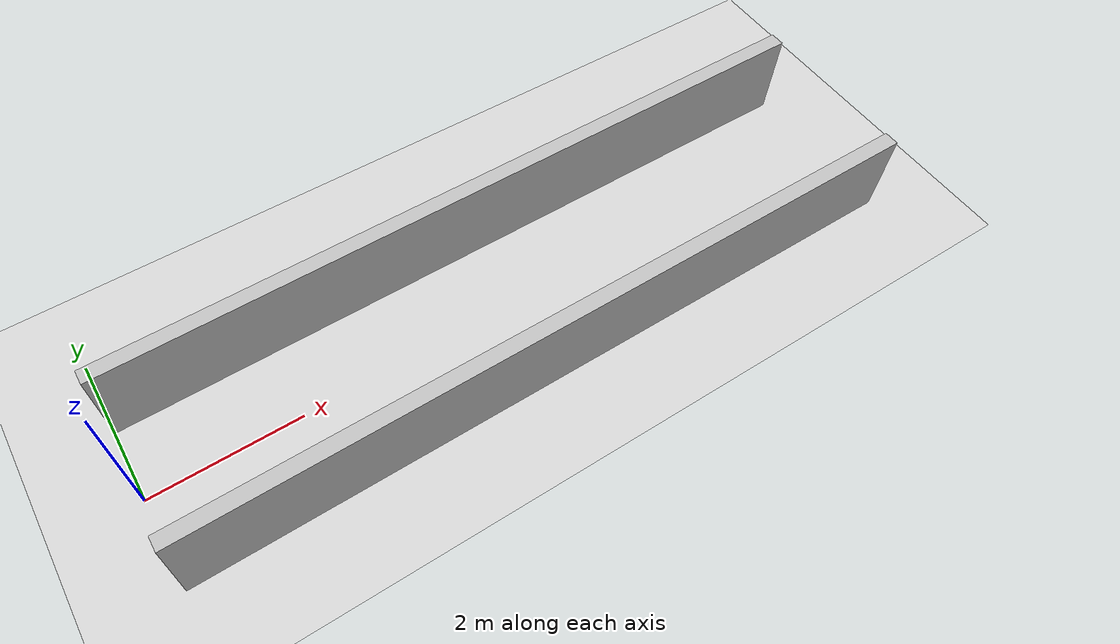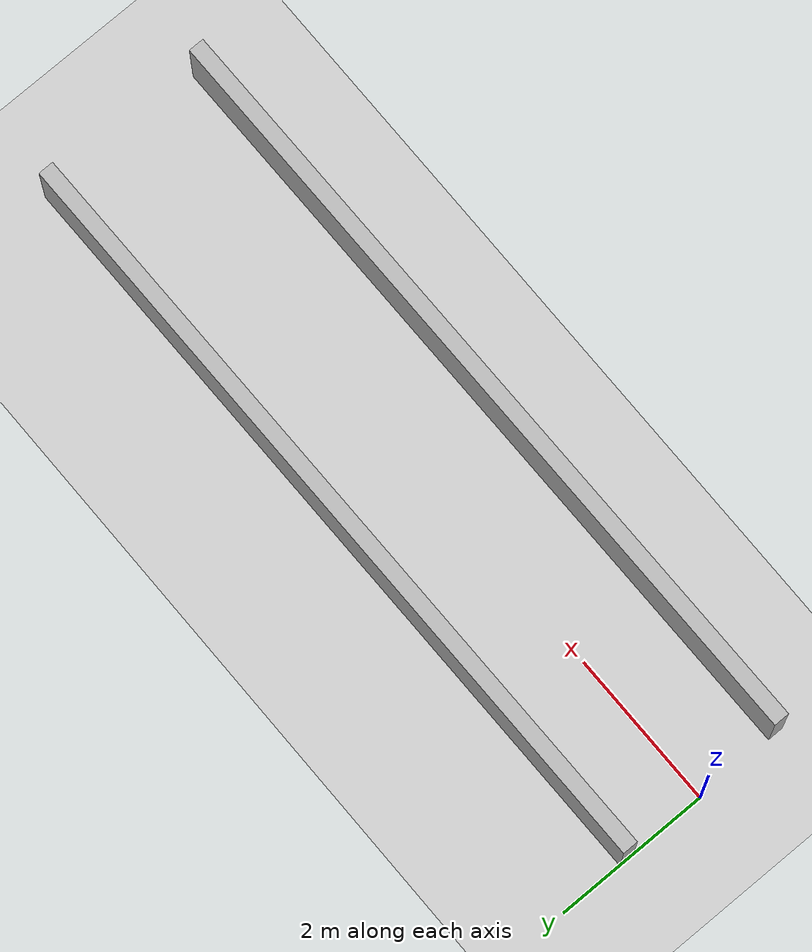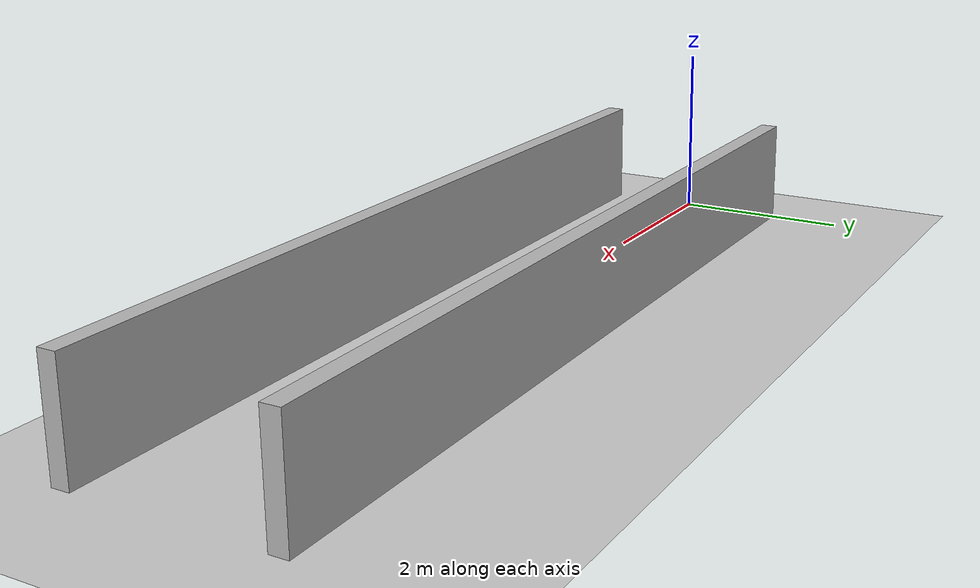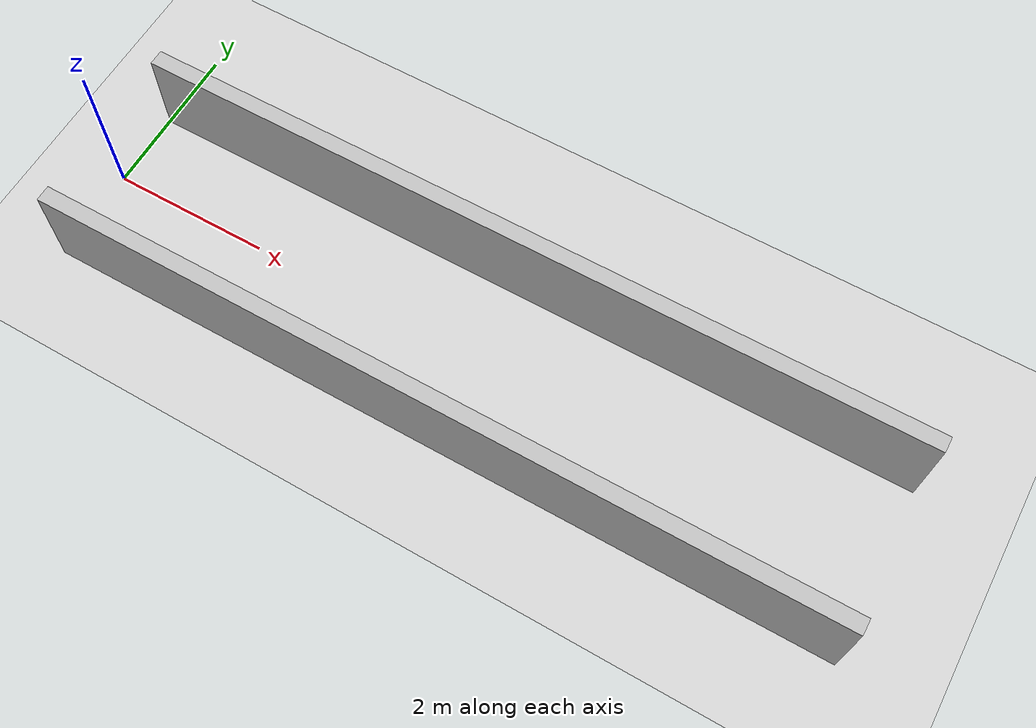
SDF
<?xml version="1.0"?>
<sdf version="1.6">
  <world name="v2-04g-r4-corridor-s5070">
    <gravity>0 0 -9.81</gravity>
    <physics name="v2_deterministic" type="ode">
      <max_step_size>0.002</max_step_size>
      <real_time_update_rate>500</real_time_update_rate>
    </physics>
    <include>
      <uri>model://sun</uri>
    </include>
    <include>
      <uri>model://ground_plane</uri>
    </include>
    <model name="corridor-left">
      <static>true</static>
      <pose>5.001451517 1.098722149 0.600000000 0 0 0.003820376</pose>
      <link name="link">
        <collision name="collision">
          <geometry>
            <box>
              <size>10.000000 0.200000 1.200000</size>
            </box>
          </geometry>
        </collision>
        <visual name="visual">
          <geometry>
            <box>
              <size>10.000000 0.200000 1.200000</size>
            </box>
          </geometry>
        </visual>
      </link>
    </model>
    <model name="corridor-right">
      <static>true</static>
      <pose>5.005643133 -1.087278450 0.600000000 0 0 0.003881858</pose>
      <link name="link">
        <collision name="collision">
          <geometry>
            <box>
              <size>10.000000 0.200000 1.200000</size>
            </box>
          </geometry>
        </collision>
        <visual name="visual">
          <geometry>
            <box>
              <size>10.000000 0.200000 1.200000</size>
            </box>
          </geometry>
        </visual>
      </link>
    </model>
  </world>
</sdf>
